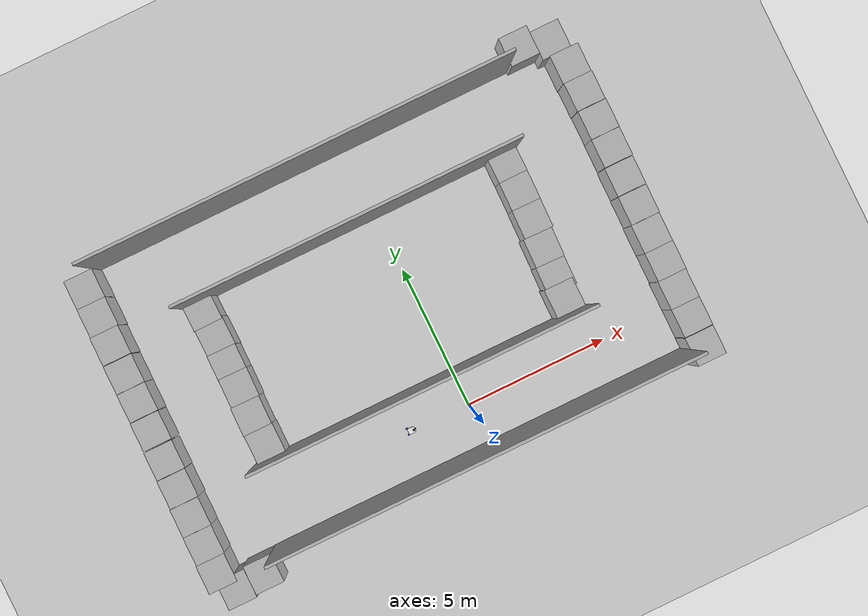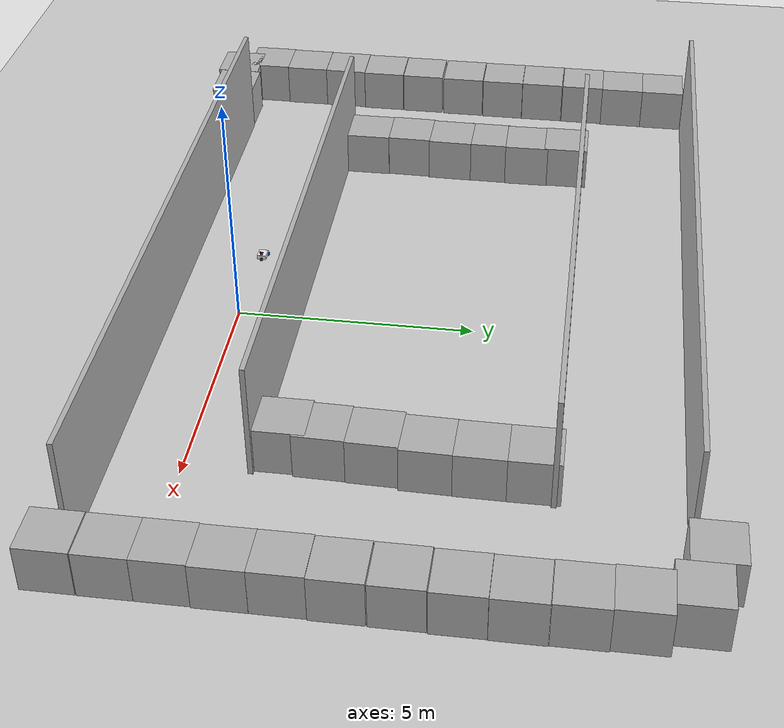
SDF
<sdf version='1.9'>
  <world name='levine_world'>
    <physics name='1ms' type='ode'>
      <max_step_size>0.001</max_step_size>
      <real_time_factor>1</real_time_factor>
      <real_time_update_rate>1000</real_time_update_rate>
    </physics>
    <plugin name='gz::sim::systems::Physics' filename='gz-sim-physics-system'/>
    <plugin name='gz::sim::systems::UserCommands' filename='gz-sim-user-commands-system'/>
    <plugin name='gz::sim::systems::SceneBroadcaster' filename='gz-sim-scene-broadcaster-system'/>
    <plugin name='gz::sim::systems::Sensors' filename='gz-sim-sensors-system'>
      <render_engine>ogre2</render_engine>
    </plugin>
    <gravity>0 0 -9.8</gravity>
    <magnetic_field>6e-06 2.3e-05 -4.2e-05</magnetic_field>
    <atmosphere type='adiabatic'/>
    <scene>
      <ambient>0.4 0.4 0.4 1</ambient>
      <background>0.7 0.7 0.7 1</background>
      <shadows>true</shadows>
    </scene>
    <model name='ground_plane'>
      <static>true</static>
      <link name='link'>
        <collision name='collision'>
          <geometry>
            <plane>
              <normal>0 0 1</normal>
              <size>102.45 102.45</size>
            </plane>
          </geometry>
          <surface>
            <friction>
              <ode/>
            </friction>
            <bounce/>
            <contact/>
          </surface>
        </collision>
        <visual name='visual'>
          <geometry>
            <plane>
              <normal>0 0 1</normal>
              <size>102.45 102.45</size>
            </plane>
          </geometry>
          <material>
            <ambient>0.8 0.8 0.8 1</ambient>
            <diffuse>0.8 0.8 0.8 1</diffuse>
            <specular>0.8 0.8 0.8 1</specular>
          </material>
        </visual>
        <pose>0 0 0 0 -0 0</pose>
        <inertial>
          <pose>0 0 0 0 -0 0</pose>
          <mass>1</mass>
          <inertia>
            <ixx>1</ixx>
            <ixy>0</ixy>
            <ixz>0</ixz>
            <iyy>1</iyy>
            <iyz>0</iyz>
            <izz>1</izz>
          </inertia>
        </inertial>
        <enable_wind>false</enable_wind>
      </link>
      <pose>0 0 0 0 -0 0</pose>
      <self_collide>false</self_collide>
    </model>
    <model name='wall_1'>
      <static>true</static>
      <pose>-1.55252 9.43523 1.25 0 -0 0</pose>
      <link name='link'>
        <collision name='collision'>
          <geometry>
            <box>
              <size>15 0.1 2.5</size>
            </box>
          </geometry>
          <surface>
            <friction>
              <ode/>
            </friction>
            <bounce/>
            <contact/>
          </surface>
        </collision>
        <visual name='visual'>
          <geometry>
            <box>
              <size>15 0.1 2.5</size>
            </box>
          </geometry>
          <material>
            <ambient>0.7 0.7 0.7 1</ambient>
            <diffuse>0.7 0.7 0.7 1</diffuse>
            <specular>0.1 0.1 0.1 1</specular>
          </material>
        </visual>
        <pose>0 0 0 0 -0 0</pose>
        <inertial>
          <pose>0 0 0 0 -0 0</pose>
          <mass>1</mass>
          <inertia>
            <ixx>1</ixx>
            <ixy>0</ixy>
            <ixz>0</ixz>
            <iyy>1</iyy>
            <iyz>0</iyz>
            <izz>1</izz>
          </inertia>
        </inertial>
        <enable_wind>false</enable_wind>
      </link>
      <self_collide>false</self_collide>
    </model>
    <model name='wall_3'>
      <static>true</static>
      <pose>-0.333023 -1.4304 1.25 0 -0 0</pose>
      <link name='link'>
        <collision name='collision'>
          <geometry>
            <box>
              <size>15 0.1 2.5</size>
            </box>
          </geometry>
          <surface>
            <friction>
              <ode/>
            </friction>
            <bounce/>
            <contact/>
          </surface>
        </collision>
        <visual name='visual'>
          <geometry>
            <box>
              <size>15 0.1 2.5</size>
            </box>
          </geometry>
          <material>
            <ambient>0.7 0.7 0.7 1</ambient>
            <diffuse>0.7 0.7 0.7 1</diffuse>
            <specular>0.1 0.1 0.1 1</specular>
          </material>
        </visual>
        <pose>0 0 0 0 -0 0</pose>
        <inertial>
          <pose>0 0 0 0 -0 0</pose>
          <mass>1</mass>
          <inertia>
            <ixx>1</ixx>
            <ixy>0</ixy>
            <ixz>0</ixz>
            <iyy>1</iyy>
            <iyz>0</iyz>
            <izz>1</izz>
          </inertia>
        </inertial>
        <enable_wind>false</enable_wind>
      </link>
      <self_collide>false</self_collide>
    </model>
    <model name='wall_5'>
      <static>true</static>
      <pose>-0.982877 6.97517 1.25 0 -0 0</pose>
      <link name='link'>
        <collision name='collision'>
          <geometry>
            <box>
              <size>12 0.1 2.5</size>
            </box>
          </geometry>
          <surface>
            <friction>
              <ode/>
            </friction>
            <bounce/>
            <contact/>
          </surface>
        </collision>
        <visual name='visual'>
          <geometry>
            <box>
              <size>12 0.1 2.5</size>
            </box>
          </geometry>
          <material>
            <ambient>0.7 0.7 0.7 1</ambient>
            <diffuse>0.7 0.7 0.7 1</diffuse>
            <specular>0.1 0.1 0.1 1</specular>
          </material>
        </visual>
        <pose>0 0 0 0 -0 0</pose>
        <inertial>
          <pose>0 0 0 0 -0 0</pose>
          <mass>1</mass>
          <inertia>
            <ixx>1</ixx>
            <ixy>0</ixy>
            <ixz>0</ixz>
            <iyy>1</iyy>
            <iyz>0</iyz>
            <izz>1</izz>
          </inertia>
        </inertial>
        <enable_wind>false</enable_wind>
      </link>
      <self_collide>false</self_collide>
    </model>
    <model name='wall_6'>
      <static>true</static>
      <pose>-1.15133 1.31562 1.25 0 -0 0</pose>
      <link name='link'>
        <collision name='collision'>
          <geometry>
            <box>
              <size>12 0.1 2.5</size>
            </box>
          </geometry>
          <surface>
            <friction>
              <ode/>
            </friction>
            <bounce/>
            <contact/>
          </surface>
        </collision>
        <visual name='visual'>
          <geometry>
            <box>
              <size>12 0.1 2.5</size>
            </box>
          </geometry>
          <material>
            <ambient>0.7 0.7 0.7 1</ambient>
            <diffuse>0.7 0.7 0.7 1</diffuse>
            <specular>0.1 0.1 0.1 1</specular>
          </material>
        </visual>
        <pose>0 0 0 0 -0 0</pose>
        <inertial>
          <pose>0 0 0 0 -0 0</pose>
          <mass>1</mass>
          <inertia>
            <ixx>1</ixx>
            <ixy>0</ixy>
            <ixz>0</ixz>
            <iyy>1</iyy>
            <iyz>0</iyz>
            <izz>1</izz>
          </inertia>
        </inertial>
        <enable_wind>false</enable_wind>
      </link>
      <self_collide>false</self_collide>
    </model>
    <model name='my_bot'>
      <link name='base_link'>
        <inertial>
          <pose>0.177215 0 0.060506 0 -0 0</pose>
          <mass>0.79000000000000004</mass>
          <inertia>
            <ixx>0.0027181900000000001</ixx>
            <ixy>0</ixy>
            <ixz>0.00091088599999999997</ixz>
            <iyy>0.0116814</iyy>
            <iyz>0</iyz>
            <izz>0.011264</izz>
          </inertia>
        </inertial>
        <collision name='base_link_fixed_joint_lump__chassis_collision'>
          <pose>0.12 0 0.05 0 0 0</pose>
          <geometry>
            <box>
              <size>0.24 0.16 0.1</size>
            </box>
          </geometry>
          <surface>
            <contact>
              <ode/>
            </contact>
            <friction>
              <ode/>
            </friction>
            <bounce/>
          </surface>
        </collision>
        <collision name='base_link_fixed_joint_lump__caster_wheel_collision_1'>
          <pose>0.24 0 0 0 0 0</pose>
          <geometry>
            <sphere>
              <radius>0.040000000000000001</radius>
            </sphere>
          </geometry>
          <surface>
            <contact>
              <ode/>
            </contact>
            <friction>
              <ode>
                <mu>0.001</mu>
                <mu2>0.001</mu2>
              </ode>
            </friction>
            <bounce/>
          </surface>
        </collision>
        <collision name='base_link_fixed_joint_lump__laser_frame_collision_2'>
          <pose>0.2 0 0.12 0 0 0</pose>
          <geometry>
            <cylinder>
              <length>0.040000000000000001</length>
              <radius>0.033000000000000002</radius>
            </cylinder>
          </geometry>
          <surface>
            <contact>
              <ode/>
            </contact>
            <friction>
              <ode/>
            </friction>
            <bounce/>
          </surface>
        </collision>
        <visual name='base_link_fixed_joint_lump__chassis_visual'>
          <pose>0.12 0 0.05 0 0 0</pose>
          <geometry>
            <box>
              <size>0.24 0.2 0.1</size>
            </box>
          </geometry>
          <material>
            <script>
              <name>Gazebo/White</name>
              <uri>file://media/materials/scripts/gazebo.material</uri>
            </script>
            <diffuse>1 1 1 1</diffuse>
            <ambient>1 1 1 1</ambient>
          </material>
        </visual>
        <visual name='base_link_fixed_joint_lump__camera_link_visual_1'>
          <pose>0.2 0 0.16 0 0 0</pose>
          <geometry>
            <box>
              <size>0.025 0.09 0.02</size>
            </box>
          </geometry>
          <material>
            <script>
              <name>Gazebo/Blue</name>
              <uri>file://media/materials/scripts/gazebo.material</uri>
            </script>
            <diffuse>0.25 0.25 1 1</diffuse>
            <ambient>0.25 0.25 1 1</ambient>
          </material>
        </visual>
        <visual name='base_link_fixed_joint_lump__caster_wheel_visual_2'>
          <pose>0.24 0 0 0 0 0</pose>
          <geometry>
            <sphere>
              <radius>0.040000000000000001</radius>
            </sphere>
          </geometry>
          <material>
            <script>
              <name>Gazebo/Black</name>
              <uri>file://media/materials/scripts/gazebo.material</uri>
            </script>
            <diffuse>0 0 0 1</diffuse>
            <ambient>0 0 0 1</ambient>
          </material>
        </visual>
        <visual name='base_link_fixed_joint_lump__laser_frame_visual_3'>
          <pose>0.2 0 0.12 0 0 0</pose>
          <geometry>
            <cylinder>
              <length>0.040000000000000001</length>
              <radius>0.033000000000000002</radius>
            </cylinder>
          </geometry>
          <material>
            <script>
              <name>Gazebo/Red</name>
              <uri>file://media/materials/scripts/gazebo.material</uri>
            </script>
            <diffuse>1 0 0 1</diffuse>
            <ambient>1 0 0 1</ambient>
          </material>
        </visual>
        <sensor name='camera_sensor' type='camera'>
          <pose>0.2 0 0.16 0 -0 0</pose>
          <topic>camera/image_raw</topic>
          <update_rate>10</update_rate>
          <enable_metrics>false</enable_metrics>
          <camera name='__default__'>
            <pose>0 0 0 0 -0 0</pose>
            <horizontal_fov>1.089</horizontal_fov>
            <image>
              <width>640</width>
              <height>480</height>
              <format>BGR_INT8</format>
              <anti_aliasing>4</anti_aliasing>
            </image>
            <camera_info_topic>camera/camera_info</camera_info_topic>
            <trigger_topic></trigger_topic>
            <triggered>false</triggered>
            <clip>
              <near>0.050000000000000003</near>
              <far>8</far>
            </clip>
            <save enabled='false'>
              <path>__default__</path>
            </save>
            <visibility_mask>4294967295</visibility_mask>
            <noise>
              <type>none</type>
              <mean>0</mean>
              <stddev>0</stddev>
            </noise>
            <distortion>
              <k1>0</k1>
              <k2>0</k2>
              <k3>0</k3>
              <p1>0</p1>
              <p2>0</p2>
              <center>0.5 0.5</center>
            </distortion>
            <lens>
              <type>stereographic</type>
              <scale_to_hfov>true</scale_to_hfov>
              <cutoff_angle>1.5708</cutoff_angle>
              <env_texture_size>256</env_texture_size>
            </lens>
            <optical_frame_id></optical_frame_id>
          </camera>
        </sensor>
        <sensor name='laser' type='gpu_lidar'>
          <pose>0.2 0 0.12 0 -0 0</pose>
          <topic>scan</topic>
          <update_rate>10</update_rate>
          <enable_metrics>false</enable_metrics>
          <lidar>
            <scan>
              <horizontal>
                <samples>360</samples>
                <resolution>1</resolution>
                <min_angle>-3.1400000000000001</min_angle>
                <max_angle>3.1400000000000001</max_angle>
              </horizontal>
              <vertical>
                <samples>1</samples>
                <min_angle>0</min_angle>
                <max_angle>0</max_angle>
                <resolution>1</resolution>
              </vertical>
            </scan>
            <range>
              <min>0.29999999999999999</min>
              <max>12</max>
              <resolution>0</resolution>
            </range>
            <noise>
              <type>none</type>
              <mean>0</mean>
              <stddev>0</stddev>
            </noise>
            <visibility_mask>4294967295</visibility_mask>
          </lidar>
        </sensor>
        <pose>0 0 0 0 -0 0</pose>
        <enable_wind>false</enable_wind>
      </link>
      <joint name='left_wheel_joint' type='revolute'>
        <pose>0 -0 0 0 0 -0</pose>
        <parent>base_link</parent>
        <child>left_wheel</child>
        <axis>
          <xyz>0 0 1</xyz>
          <limit>
            <lower>-10000000000000000</lower>
            <upper>10000000000000000</upper>
            <effort>inf</effort>
            <velocity>inf</velocity>
            <stiffness>100000000</stiffness>
            <dissipation>1</dissipation>
          </limit>
          <dynamics>
            <spring_reference>0</spring_reference>
            <spring_stiffness>0</spring_stiffness>
            <damping>0</damping>
            <friction>0</friction>
          </dynamics>
        </axis>
      </joint>
      <link name='left_wheel'>
        <pose>0 0.1 -0 1.5708 0.336591 3.14159</pose>
        <inertial>
          <pose>0 0 0 0 -0 0</pose>
          <mass>0.10000000000000001</mass>
          <inertia>
            <ixx>5.33333e-05</ixx>
            <ixy>0</ixy>
            <ixz>0</ixz>
            <iyy>5.33333e-05</iyy>
            <iyz>0</iyz>
            <izz>8.0000000000000007e-05</izz>
          </inertia>
        </inertial>
        <collision name='left_wheel_collision'>
          <pose>0 0 0 0 0 0</pose>
          <geometry>
            <sphere>
              <radius>0.040000000000000001</radius>
            </sphere>
          </geometry>
          <surface>
            <contact>
              <ode/>
            </contact>
            <friction>
              <ode/>
            </friction>
            <bounce/>
          </surface>
        </collision>
        <visual name='left_wheel_visual'>
          <pose>0 0 0 0 0 0</pose>
          <geometry>
            <cylinder>
              <length>0.040000000000000001</length>
              <radius>0.040000000000000001</radius>
            </cylinder>
          </geometry>
          <material>
            <script>
              <name>Gazebo/Blue</name>
              <uri>file://media/materials/scripts/gazebo.material</uri>
            </script>
            <diffuse>0.25 0.25 1 1</diffuse>
            <ambient>0.25 0.25 1 1</ambient>
          </material>
        </visual>
        <enable_wind>false</enable_wind>
      </link>
      <joint name='right_wheel_joint' type='revolute'>
        <pose>0 0 0 0 -0 0</pose>
        <parent>base_link</parent>
        <child>right_wheel</child>
        <axis>
          <xyz>0 0 -1</xyz>
          <limit>
            <lower>-10000000000000000</lower>
            <upper>10000000000000000</upper>
            <effort>inf</effort>
            <velocity>inf</velocity>
            <stiffness>100000000</stiffness>
            <dissipation>1</dissipation>
          </limit>
          <dynamics>
            <spring_reference>0</spring_reference>
            <spring_stiffness>0</spring_stiffness>
            <damping>0</damping>
            <friction>0</friction>
          </dynamics>
        </axis>
      </joint>
      <link name='right_wheel'>
        <pose>0 -0.1 0 1.5708 -0.404543 0</pose>
        <inertial>
          <pose>0 0 0 0 -0 0</pose>
          <mass>0.10000000000000001</mass>
          <inertia>
            <ixx>5.33333e-05</ixx>
            <ixy>0</ixy>
            <ixz>0</ixz>
            <iyy>5.33333e-05</iyy>
            <iyz>0</iyz>
            <izz>8.0000000000000007e-05</izz>
          </inertia>
        </inertial>
        <collision name='right_wheel_collision'>
          <pose>0 0 0 0 0 0</pose>
          <geometry>
            <sphere>
              <radius>0.040000000000000001</radius>
            </sphere>
          </geometry>
          <surface>
            <contact>
              <ode/>
            </contact>
            <friction>
              <ode/>
            </friction>
            <bounce/>
          </surface>
        </collision>
        <visual name='right_wheel_visual'>
          <pose>0 0 0 0 0 0</pose>
          <geometry>
            <cylinder>
              <length>0.040000000000000001</length>
              <radius>0.040000000000000001</radius>
            </cylinder>
          </geometry>
          <material>
            <script>
              <name>Gazebo/Blue</name>
              <uri>file://media/materials/scripts/gazebo.material</uri>
            </script>
            <diffuse>0.25 0.25 1 1</diffuse>
            <ambient>0.25 0.25 1 1</ambient>
          </material>
        </visual>
        <enable_wind>false</enable_wind>
      </link>
      <plugin name='gz_ros2_control::GazeboSimROS2ControlPlugin' filename='libgz_ros2_control-system.so'>
        <parameters>/home/ivan/dev_ws/install/my_bot/share/my_bot/config/my_controllers.yaml</parameters>
      </plugin>
      <frame name='base_footprint_joint' attached_to='base_link'>
        <pose>0 0 0 0 -0 0</pose>
      </frame>
      <frame name='base_footprint' attached_to='base_footprint_joint'/>
      <frame name='camera_optical_joint' attached_to='camera_link'>
        <pose>0 0 0 -1.5708 -0 -1.5708</pose>
      </frame>
      <frame name='camera_link_optical' attached_to='camera_optical_joint'/>
      <frame name='camera_joint' attached_to='chassis'>
        <pose>0.2 0 0.16 0 -0 0</pose>
      </frame>
      <frame name='camera_link' attached_to='camera_joint'/>
      <frame name='caster_wheel_joint' attached_to='chassis'>
        <pose>0.24 0 0 0 -0 0</pose>
      </frame>
      <frame name='caster_wheel' attached_to='caster_wheel_joint'/>
      <frame name='laser_joint' attached_to='chassis'>
        <pose>0.2 0 0.12 0 -0 0</pose>
      </frame>
      <frame name='laser_frame' attached_to='laser_joint'/>
      <frame name='chassis_joint' attached_to='base_link'>
        <pose>0 0 0 0 -0 0</pose>
      </frame>
      <frame name='chassis' attached_to='chassis_joint'/>
      <pose>-2.19493 0.074646 0.04 -0 0 -0.047788</pose>
      <static>false</static>
      <self_collide>false</self_collide>
    </model>
    <model name='box'>
      <pose>4.46683 6.60097 0.500107 6e-06 0.000207 0.002485</pose>
      <link name='box_link'>
        <inertial>
          <inertia>
            <ixx>0.16666</ixx>
            <ixy>0</ixy>
            <ixz>0</ixz>
            <iyy>0.16666</iyy>
            <iyz>0</iyz>
            <izz>0.16666</izz>
          </inertia>
          <mass>1</mass>
          <pose>0 0 0 0 -0 0</pose>
        </inertial>
        <collision name='box_collision'>
          <geometry>
            <box>
              <size>1 1 1</size>
            </box>
          </geometry>
          <surface>
            <friction>
              <ode/>
            </friction>
            <bounce/>
            <contact/>
          </surface>
        </collision>
        <visual name='box_visual'>
          <geometry>
            <box>
              <size>1 1 1</size>
            </box>
          </geometry>
          <material>
            <ambient>0.3 0.3 0.3 1</ambient>
            <diffuse>0.7 0.7 0.7 1</diffuse>
            <specular>1 1 1 1</specular>
          </material>
        </visual>
        <pose>0 0 0 0 -0 0</pose>
        <enable_wind>false</enable_wind>
      </link>
      <static>false</static>
      <self_collide>false</self_collide>
    </model>
    <model name='box_1'>
      <pose>4.36132 3.6148 0.500011 4e-06 1.7e-05 -0.02189</pose>
      <link name='box_link'>
        <inertial>
          <inertia>
            <ixx>0.16666</ixx>
            <ixy>0</ixy>
            <ixz>0</ixz>
            <iyy>0.16666</iyy>
            <iyz>0</iyz>
            <izz>0.16666</izz>
          </inertia>
          <mass>1</mass>
          <pose>0 0 0 0 -0 0</pose>
        </inertial>
        <collision name='box_collision'>
          <geometry>
            <box>
              <size>1 1 1</size>
            </box>
          </geometry>
          <surface>
            <friction>
              <ode/>
            </friction>
            <bounce/>
            <contact/>
          </surface>
        </collision>
        <visual name='box_visual'>
          <geometry>
            <box>
              <size>1 1 1</size>
            </box>
          </geometry>
          <material>
            <ambient>0.3 0.3 0.3 1</ambient>
            <diffuse>0.7 0.7 0.7 1</diffuse>
            <specular>1 1 1 1</specular>
          </material>
        </visual>
        <pose>0 0 0 0 -0 0</pose>
        <enable_wind>false</enable_wind>
      </link>
      <static>false</static>
      <self_collide>false</self_collide>
    </model>
    <model name='box_2'>
      <pose>4.32363 2.61545 0.500004 4e-06 -4e-06 -0.021908</pose>
      <link name='box_link'>
        <inertial>
          <inertia>
            <ixx>0.16666</ixx>
            <ixy>0</ixy>
            <ixz>0</ixz>
            <iyy>0.16666</iyy>
            <iyz>0</iyz>
            <izz>0.16666</izz>
          </inertia>
          <mass>1</mass>
          <pose>0 0 0 0 -0 0</pose>
        </inertial>
        <collision name='box_collision'>
          <geometry>
            <box>
              <size>1 1 1</size>
            </box>
          </geometry>
          <surface>
            <friction>
              <ode/>
            </friction>
            <bounce/>
            <contact/>
          </surface>
        </collision>
        <visual name='box_visual'>
          <geometry>
            <box>
              <size>1 1 1</size>
            </box>
          </geometry>
          <material>
            <ambient>0.3 0.3 0.3 1</ambient>
            <diffuse>0.7 0.7 0.7 1</diffuse>
            <specular>1 1 1 1</specular>
          </material>
        </visual>
        <pose>0 0 0 0 -0 0</pose>
        <enable_wind>false</enable_wind>
      </link>
      <static>false</static>
      <self_collide>false</self_collide>
    </model>
    <model name='box_3'>
      <pose>4.43897 4.61218 0.500031 4e-06 5.7e-05 -0.019378</pose>
      <link name='box_link'>
        <inertial>
          <inertia>
            <ixx>0.16666</ixx>
            <ixy>0</ixy>
            <ixz>0</ixz>
            <iyy>0.16666</iyy>
            <iyz>0</iyz>
            <izz>0.16666</izz>
          </inertia>
          <mass>1</mass>
          <pose>0 0 0 0 -0 0</pose>
        </inertial>
        <collision name='box_collision'>
          <geometry>
            <box>
              <size>1 1 1</size>
            </box>
          </geometry>
          <surface>
            <friction>
              <ode/>
            </friction>
            <bounce/>
            <contact/>
          </surface>
        </collision>
        <visual name='box_visual'>
          <geometry>
            <box>
              <size>1 1 1</size>
            </box>
          </geometry>
          <material>
            <ambient>0.3 0.3 0.3 1</ambient>
            <diffuse>0.7 0.7 0.7 1</diffuse>
            <specular>1 1 1 1</specular>
          </material>
        </visual>
        <pose>0 0 0 0 -0 0</pose>
        <enable_wind>false</enable_wind>
      </link>
      <static>false</static>
      <self_collide>false</self_collide>
    </model>
    <model name='box_4'>
      <pose>4.26525 1.86556 0.500012 -0 9e-06 -7e-06</pose>
      <link name='box_link'>
        <inertial>
          <inertia>
            <ixx>0.16666</ixx>
            <ixy>0</ixy>
            <ixz>0</ixz>
            <iyy>0.16666</iyy>
            <iyz>0</iyz>
            <izz>0.16666</izz>
          </inertia>
          <mass>1</mass>
          <pose>0 0 0 0 -0 0</pose>
        </inertial>
        <collision name='box_collision'>
          <geometry>
            <box>
              <size>1 1 1</size>
            </box>
          </geometry>
          <surface>
            <friction>
              <ode/>
            </friction>
            <bounce/>
            <contact/>
          </surface>
        </collision>
        <visual name='box_visual'>
          <geometry>
            <box>
              <size>1 1 1</size>
            </box>
          </geometry>
          <material>
            <ambient>0.3 0.3 0.3 1</ambient>
            <diffuse>0.7 0.7 0.7 1</diffuse>
            <specular>1 1 1 1</specular>
          </material>
        </visual>
        <pose>0 0 0 0 -0 0</pose>
        <enable_wind>false</enable_wind>
      </link>
      <static>false</static>
      <self_collide>false</self_collide>
    </model>
    <model name='box_0'>
      <pose>4.46118 5.60802 0.500063 5e-06 0.000122 -0.011508</pose>
      <link name='box_link'>
        <inertial>
          <inertia>
            <ixx>0.16666</ixx>
            <ixy>0</ixy>
            <ixz>0</ixz>
            <iyy>0.16666</iyy>
            <iyz>0</iyz>
            <izz>0.16666</izz>
          </inertia>
          <mass>1</mass>
          <pose>0 0 0 0 -0 0</pose>
        </inertial>
        <collision name='box_collision'>
          <geometry>
            <box>
              <size>1 1 1</size>
            </box>
          </geometry>
          <surface>
            <friction>
              <ode/>
            </friction>
            <bounce/>
            <contact/>
          </surface>
        </collision>
        <visual name='box_visual'>
          <geometry>
            <box>
              <size>1 1 1</size>
            </box>
          </geometry>
          <material>
            <ambient>0.3 0.3 0.3 1</ambient>
            <diffuse>0.7 0.7 0.7 1</diffuse>
            <specular>1 1 1 1</specular>
          </material>
        </visual>
        <pose>0 0 0 0 -0 0</pose>
        <enable_wind>false</enable_wind>
      </link>
      <static>false</static>
      <self_collide>false</self_collide>
    </model>
    <model name='box_9'>
      <pose>-6.47369 1.86557 0.500036 1.6e-05 -5.7e-05 -1.5e-05</pose>
      <link name='box_link'>
        <inertial>
          <inertia>
            <ixx>0.16666</ixx>
            <ixy>0</ixy>
            <ixz>0</ixz>
            <iyy>0.16666</iyy>
            <iyz>0</iyz>
            <izz>0.16666</izz>
          </inertia>
          <mass>1</mass>
          <pose>0 0 0 0 -0 0</pose>
        </inertial>
        <collision name='box_collision'>
          <geometry>
            <box>
              <size>1 1 1</size>
            </box>
          </geometry>
          <surface>
            <friction>
              <ode/>
            </friction>
            <bounce/>
            <contact/>
          </surface>
        </collision>
        <visual name='box_visual'>
          <geometry>
            <box>
              <size>1 1 1</size>
            </box>
          </geometry>
          <material>
            <ambient>0.3 0.3 0.3 1</ambient>
            <diffuse>0.7 0.7 0.7 1</diffuse>
            <specular>1 1 1 1</specular>
          </material>
        </visual>
        <pose>0 0 0 0 -0 0</pose>
        <enable_wind>false</enable_wind>
      </link>
      <static>false</static>
      <self_collide>false</self_collide>
    </model>
    <model name='box_10'>
      <pose>-6.43593 4.69602 0.500002 -3e-06 -0 -0.007942</pose>
      <link name='box_link'>
        <inertial>
          <inertia>
            <ixx>0.16666</ixx>
            <ixy>0</ixy>
            <ixz>0</ixz>
            <iyy>0.16666</iyy>
            <iyz>0</iyz>
            <izz>0.16666</izz>
          </inertia>
          <mass>1</mass>
          <pose>0 0 0 0 -0 0</pose>
        </inertial>
        <collision name='box_collision'>
          <geometry>
            <box>
              <size>1 1 1</size>
            </box>
          </geometry>
          <surface>
            <friction>
              <ode/>
            </friction>
            <bounce/>
            <contact/>
          </surface>
        </collision>
        <visual name='box_visual'>
          <geometry>
            <box>
              <size>1 1 1</size>
            </box>
          </geometry>
          <material>
            <ambient>0.3 0.3 0.3 1</ambient>
            <diffuse>0.7 0.7 0.7 1</diffuse>
            <specular>1 1 1 1</specular>
          </material>
        </visual>
        <pose>0 0 0 0 -0 0</pose>
        <enable_wind>false</enable_wind>
      </link>
      <static>false</static>
      <self_collide>false</self_collide>
    </model>
    <model name='box_13'>
      <pose>-6.42009 5.6737 0.5 0 0 0.010065</pose>
      <link name='box_link'>
        <inertial>
          <inertia>
            <ixx>0.16666</ixx>
            <ixy>0</ixy>
            <ixz>0</ixz>
            <iyy>0.16666</iyy>
            <iyz>0</iyz>
            <izz>0.16666</izz>
          </inertia>
          <mass>1</mass>
          <pose>0 0 0 0 -0 0</pose>
        </inertial>
        <collision name='box_collision'>
          <geometry>
            <box>
              <size>1 1 1</size>
            </box>
          </geometry>
          <surface>
            <friction>
              <ode/>
            </friction>
            <bounce/>
            <contact/>
          </surface>
        </collision>
        <visual name='box_visual'>
          <geometry>
            <box>
              <size>1 1 1</size>
            </box>
          </geometry>
          <material>
            <ambient>0.3 0.3 0.3 1</ambient>
            <diffuse>0.7 0.7 0.7 1</diffuse>
            <specular>1 1 1 1</specular>
          </material>
        </visual>
        <pose>0 0 0 0 -0 0</pose>
        <enable_wind>false</enable_wind>
      </link>
      <static>false</static>
      <self_collide>false</self_collide>
    </model>
    <model name='box_14'>
      <pose>-6.44751 6.59984 0.500004 4e-06 0 0.001034</pose>
      <link name='box_link'>
        <inertial>
          <inertia>
            <ixx>0.16666</ixx>
            <ixy>0</ixy>
            <ixz>0</ixz>
            <iyy>0.16666</iyy>
            <iyz>0</iyz>
            <izz>0.16666</izz>
          </inertia>
          <mass>1</mass>
          <pose>0 0 0 0 -0 0</pose>
        </inertial>
        <collision name='box_collision'>
          <geometry>
            <box>
              <size>1 1 1</size>
            </box>
          </geometry>
          <surface>
            <friction>
              <ode/>
            </friction>
            <bounce/>
            <contact/>
          </surface>
        </collision>
        <visual name='box_visual'>
          <geometry>
            <box>
              <size>1 1 1</size>
            </box>
          </geometry>
          <material>
            <ambient>0.3 0.3 0.3 1</ambient>
            <diffuse>0.7 0.7 0.7 1</diffuse>
            <specular>1 1 1 1</specular>
          </material>
        </visual>
        <pose>0 0 0 0 -0 0</pose>
        <enable_wind>false</enable_wind>
      </link>
      <static>false</static>
      <self_collide>false</self_collide>
    </model>
    <model name='box_15'>
      <pose>-6.44078 3.85474 0.500004 8e-06 -0 -0.015068</pose>
      <link name='box_link'>
        <inertial>
          <inertia>
            <ixx>0.16666</ixx>
            <ixy>0</ixy>
            <ixz>0</ixz>
            <iyy>0.16666</iyy>
            <iyz>0</iyz>
            <izz>0.16666</izz>
          </inertia>
          <mass>1</mass>
          <pose>0 0 0 0 -0 0</pose>
        </inertial>
        <collision name='box_collision'>
          <geometry>
            <box>
              <size>1 1 1</size>
            </box>
          </geometry>
          <surface>
            <friction>
              <ode/>
            </friction>
            <bounce/>
            <contact/>
          </surface>
        </collision>
        <visual name='box_visual'>
          <geometry>
            <box>
              <size>1 1 1</size>
            </box>
          </geometry>
          <material>
            <ambient>0.3 0.3 0.3 1</ambient>
            <diffuse>0.7 0.7 0.7 1</diffuse>
            <specular>1 1 1 1</specular>
          </material>
        </visual>
        <pose>0 0 0 0 -0 0</pose>
        <enable_wind>false</enable_wind>
      </link>
      <static>false</static>
      <self_collide>false</self_collide>
    </model>
    <model name='box_16'>
      <pose>-6.48497 2.8571 0.500011 5e-06 -1.4e-05 -0.014585</pose>
      <link name='box_link'>
        <inertial>
          <inertia>
            <ixx>0.16666</ixx>
            <ixy>0</ixy>
            <ixz>0</ixz>
            <iyy>0.16666</iyy>
            <iyz>0</iyz>
            <izz>0.16666</izz>
          </inertia>
          <mass>1</mass>
          <pose>0 0 0 0 -0 0</pose>
        </inertial>
        <collision name='box_collision'>
          <geometry>
            <box>
              <size>1 1 1</size>
            </box>
          </geometry>
          <surface>
            <friction>
              <ode/>
            </friction>
            <bounce/>
            <contact/>
          </surface>
        </collision>
        <visual name='box_visual'>
          <geometry>
            <box>
              <size>1 1 1</size>
            </box>
          </geometry>
          <material>
            <ambient>0.3 0.3 0.3 1</ambient>
            <diffuse>0.7 0.7 0.7 1</diffuse>
            <specular>1 1 1 1</specular>
          </material>
        </visual>
        <pose>0 0 0 0 -0 0</pose>
        <enable_wind>false</enable_wind>
      </link>
      <static>false</static>
      <self_collide>false</self_collide>
    </model>
    <model name='box_5'>
      <pose>-8.34821 -1.89162 0.5 0 0 -0</pose>
      <link name='box_link'>
        <inertial>
          <inertia>
            <ixx>0.16666</ixx>
            <ixy>0</ixy>
            <ixz>0</ixz>
            <iyy>0.16666</iyy>
            <iyz>0</iyz>
            <izz>0.16666</izz>
          </inertia>
          <mass>1</mass>
          <pose>0 0 0 0 -0 0</pose>
        </inertial>
        <collision name='box_collision'>
          <geometry>
            <box>
              <size>1 1 1</size>
            </box>
          </geometry>
          <surface>
            <friction>
              <ode/>
            </friction>
            <bounce/>
            <contact/>
          </surface>
        </collision>
        <visual name='box_visual'>
          <geometry>
            <box>
              <size>1 1 1</size>
            </box>
          </geometry>
          <material>
            <ambient>0.3 0.3 0.3 1</ambient>
            <diffuse>0.7 0.7 0.7 1</diffuse>
            <specular>1 1 1 1</specular>
          </material>
        </visual>
        <pose>0 0 0 0 -0 0</pose>
        <enable_wind>false</enable_wind>
      </link>
      <static>false</static>
      <self_collide>false</self_collide>
    </model>
    <model name='box_6'>
      <pose>-9.53217 8.8738 0.5 0 0 -0</pose>
      <link name='box_link'>
        <inertial>
          <inertia>
            <ixx>0.16666</ixx>
            <ixy>0</ixy>
            <ixz>0</ixz>
            <iyy>0.16666</iyy>
            <iyz>0</iyz>
            <izz>0.16666</izz>
          </inertia>
          <mass>1</mass>
          <pose>0 0 0 0 -0 0</pose>
        </inertial>
        <collision name='box_collision'>
          <geometry>
            <box>
              <size>1 1 1</size>
            </box>
          </geometry>
          <surface>
            <friction>
              <ode/>
            </friction>
            <bounce/>
            <contact/>
          </surface>
        </collision>
        <visual name='box_visual'>
          <geometry>
            <box>
              <size>1 1 1</size>
            </box>
          </geometry>
          <material>
            <ambient>0.3 0.3 0.3 1</ambient>
            <diffuse>0.7 0.7 0.7 1</diffuse>
            <specular>1 1 1 1</specular>
          </material>
        </visual>
        <pose>0 0 0 0 -0 0</pose>
        <enable_wind>false</enable_wind>
      </link>
      <static>false</static>
      <self_collide>false</self_collide>
    </model>
    <model name='box_7'>
      <pose>-9.54126 7.8738 0.5 0 0 -0</pose>
      <link name='box_link'>
        <inertial>
          <inertia>
            <ixx>0.16666</ixx>
            <ixy>0</ixy>
            <ixz>0</ixz>
            <iyy>0.16666</iyy>
            <iyz>0</iyz>
            <izz>0.16666</izz>
          </inertia>
          <mass>1</mass>
          <pose>0 0 0 0 -0 0</pose>
        </inertial>
        <collision name='box_collision'>
          <geometry>
            <box>
              <size>1 1 1</size>
            </box>
          </geometry>
          <surface>
            <friction>
              <ode/>
            </friction>
            <bounce/>
            <contact/>
          </surface>
        </collision>
        <visual name='box_visual'>
          <geometry>
            <box>
              <size>1 1 1</size>
            </box>
          </geometry>
          <material>
            <ambient>0.3 0.3 0.3 1</ambient>
            <diffuse>0.7 0.7 0.7 1</diffuse>
            <specular>1 1 1 1</specular>
          </material>
        </visual>
        <pose>0 0 0 0 -0 0</pose>
        <enable_wind>false</enable_wind>
      </link>
      <static>false</static>
      <self_collide>false</self_collide>
    </model>
    <model name='box_8'>
      <pose>-9.56931 6.8738 0.5 0 0 -0</pose>
      <link name='box_link'>
        <inertial>
          <inertia>
            <ixx>0.16666</ixx>
            <ixy>0</ixy>
            <ixz>0</ixz>
            <iyy>0.16666</iyy>
            <iyz>0</iyz>
            <izz>0.16666</izz>
          </inertia>
          <mass>1</mass>
          <pose>0 0 0 0 -0 0</pose>
        </inertial>
        <collision name='box_collision'>
          <geometry>
            <box>
              <size>1 1 1</size>
            </box>
          </geometry>
          <surface>
            <friction>
              <ode/>
            </friction>
            <bounce/>
            <contact/>
          </surface>
        </collision>
        <visual name='box_visual'>
          <geometry>
            <box>
              <size>1 1 1</size>
            </box>
          </geometry>
          <material>
            <ambient>0.3 0.3 0.3 1</ambient>
            <diffuse>0.7 0.7 0.7 1</diffuse>
            <specular>1 1 1 1</specular>
          </material>
        </visual>
        <pose>0 0 0 0 -0 0</pose>
        <enable_wind>false</enable_wind>
      </link>
      <static>false</static>
      <self_collide>false</self_collide>
    </model>
    <model name='box_11'>
      <pose>-9.57977 5.85483 0.5 0 0 -0</pose>
      <link name='box_link'>
        <inertial>
          <inertia>
            <ixx>0.16666</ixx>
            <ixy>0</ixy>
            <ixz>0</ixz>
            <iyy>0.16666</iyy>
            <iyz>0</iyz>
            <izz>0.16666</izz>
          </inertia>
          <mass>1</mass>
          <pose>0 0 0 0 -0 0</pose>
        </inertial>
        <collision name='box_collision'>
          <geometry>
            <box>
              <size>1 1 1</size>
            </box>
          </geometry>
          <surface>
            <friction>
              <ode/>
            </friction>
            <bounce/>
            <contact/>
          </surface>
        </collision>
        <visual name='box_visual'>
          <geometry>
            <box>
              <size>1 1 1</size>
            </box>
          </geometry>
          <material>
            <ambient>0.3 0.3 0.3 1</ambient>
            <diffuse>0.7 0.7 0.7 1</diffuse>
            <specular>1 1 1 1</specular>
          </material>
        </visual>
        <pose>0 0 0 0 -0 0</pose>
        <enable_wind>false</enable_wind>
      </link>
      <static>false</static>
      <self_collide>false</self_collide>
    </model>
    <model name='box_12'>
      <pose>-9.58502 4.84998 0.5 0 0 -0</pose>
      <link name='box_link'>
        <inertial>
          <inertia>
            <ixx>0.16666</ixx>
            <ixy>0</ixy>
            <ixz>0</ixz>
            <iyy>0.16666</iyy>
            <iyz>0</iyz>
            <izz>0.16666</izz>
          </inertia>
          <mass>1</mass>
          <pose>0 0 0 0 -0 0</pose>
        </inertial>
        <collision name='box_collision'>
          <geometry>
            <box>
              <size>1 1 1</size>
            </box>
          </geometry>
          <surface>
            <friction>
              <ode/>
            </friction>
            <bounce/>
            <contact/>
          </surface>
        </collision>
        <visual name='box_visual'>
          <geometry>
            <box>
              <size>1 1 1</size>
            </box>
          </geometry>
          <material>
            <ambient>0.3 0.3 0.3 1</ambient>
            <diffuse>0.7 0.7 0.7 1</diffuse>
            <specular>1 1 1 1</specular>
          </material>
        </visual>
        <pose>0 0 0 0 -0 0</pose>
        <enable_wind>false</enable_wind>
      </link>
      <static>false</static>
      <self_collide>false</self_collide>
    </model>
    <model name='box_17'>
      <pose>-9.60114 3.83494 0.5 0 -0 0</pose>
      <link name='box_link'>
        <inertial>
          <inertia>
            <ixx>0.16666</ixx>
            <ixy>0</ixy>
            <ixz>0</ixz>
            <iyy>0.16666</iyy>
            <iyz>0</iyz>
            <izz>0.16666</izz>
          </inertia>
          <mass>1</mass>
          <pose>0 0 0 0 -0 0</pose>
        </inertial>
        <collision name='box_collision'>
          <geometry>
            <box>
              <size>1 1 1</size>
            </box>
          </geometry>
          <surface>
            <friction>
              <ode/>
            </friction>
            <bounce/>
            <contact/>
          </surface>
        </collision>
        <visual name='box_visual'>
          <geometry>
            <box>
              <size>1 1 1</size>
            </box>
          </geometry>
          <material>
            <ambient>0.3 0.3 0.3 1</ambient>
            <diffuse>0.7 0.7 0.7 1</diffuse>
            <specular>1 1 1 1</specular>
          </material>
        </visual>
        <pose>0 0 0 0 -0 0</pose>
        <enable_wind>false</enable_wind>
      </link>
      <static>false</static>
      <self_collide>false</self_collide>
    </model>
    <model name='box_18'>
      <pose>-9.62309 2.79496 0.5 0 0 -0</pose>
      <link name='box_link'>
        <inertial>
          <inertia>
            <ixx>0.16666</ixx>
            <ixy>0</ixy>
            <ixz>0</ixz>
            <iyy>0.16666</iyy>
            <iyz>0</iyz>
            <izz>0.16666</izz>
          </inertia>
          <mass>1</mass>
          <pose>0 0 0 0 -0 0</pose>
        </inertial>
        <collision name='box_collision'>
          <geometry>
            <box>
              <size>1 1 1</size>
            </box>
          </geometry>
          <surface>
            <friction>
              <ode/>
            </friction>
            <bounce/>
            <contact/>
          </surface>
        </collision>
        <visual name='box_visual'>
          <geometry>
            <box>
              <size>1 1 1</size>
            </box>
          </geometry>
          <material>
            <ambient>0.3 0.3 0.3 1</ambient>
            <diffuse>0.7 0.7 0.7 1</diffuse>
            <specular>1 1 1 1</specular>
          </material>
        </visual>
        <pose>0 0 0 0 -0 0</pose>
        <enable_wind>false</enable_wind>
      </link>
      <static>false</static>
      <self_collide>false</self_collide>
    </model>
    <model name='box_19'>
      <pose>-9.639 1.78309 0.5 0 0 -0</pose>
      <link name='box_link'>
        <inertial>
          <inertia>
            <ixx>0.16666</ixx>
            <ixy>0</ixy>
            <ixz>0</ixz>
            <iyy>0.16666</iyy>
            <iyz>0</iyz>
            <izz>0.16666</izz>
          </inertia>
          <mass>1</mass>
          <pose>0 0 0 0 -0 0</pose>
        </inertial>
        <collision name='box_collision'>
          <geometry>
            <box>
              <size>1 1 1</size>
            </box>
          </geometry>
          <surface>
            <friction>
              <ode/>
            </friction>
            <bounce/>
            <contact/>
          </surface>
        </collision>
        <visual name='box_visual'>
          <geometry>
            <box>
              <size>1 1 1</size>
            </box>
          </geometry>
          <material>
            <ambient>0.3 0.3 0.3 1</ambient>
            <diffuse>0.7 0.7 0.7 1</diffuse>
            <specular>1 1 1 1</specular>
          </material>
        </visual>
        <pose>0 0 0 0 -0 0</pose>
        <enable_wind>false</enable_wind>
      </link>
      <static>false</static>
      <self_collide>false</self_collide>
    </model>
    <model name='box_20'>
      <pose>-9.66595 0.777901 0.5 0 0 -0</pose>
      <link name='box_link'>
        <inertial>
          <inertia>
            <ixx>0.16666</ixx>
            <ixy>0</ixy>
            <ixz>0</ixz>
            <iyy>0.16666</iyy>
            <iyz>0</iyz>
            <izz>0.16666</izz>
          </inertia>
          <mass>1</mass>
          <pose>0 0 0 0 -0 0</pose>
        </inertial>
        <collision name='box_collision'>
          <geometry>
            <box>
              <size>1 1 1</size>
            </box>
          </geometry>
          <surface>
            <friction>
              <ode/>
            </friction>
            <bounce/>
            <contact/>
          </surface>
        </collision>
        <visual name='box_visual'>
          <geometry>
            <box>
              <size>1 1 1</size>
            </box>
          </geometry>
          <material>
            <ambient>0.3 0.3 0.3 1</ambient>
            <diffuse>0.7 0.7 0.7 1</diffuse>
            <specular>1 1 1 1</specular>
          </material>
        </visual>
        <pose>0 0 0 0 -0 0</pose>
        <enable_wind>false</enable_wind>
      </link>
      <static>false</static>
      <self_collide>false</self_collide>
    </model>
    <model name='box_21'>
      <pose>-9.67633 -0.22416 0.5 -0 -0 1e-06</pose>
      <link name='box_link'>
        <inertial>
          <inertia>
            <ixx>0.16666</ixx>
            <ixy>0</ixy>
            <ixz>0</ixz>
            <iyy>0.16666</iyy>
            <iyz>0</iyz>
            <izz>0.16666</izz>
          </inertia>
          <mass>1</mass>
          <pose>0 0 0 0 -0 0</pose>
        </inertial>
        <collision name='box_collision'>
          <geometry>
            <box>
              <size>1 1 1</size>
            </box>
          </geometry>
          <surface>
            <friction>
              <ode/>
            </friction>
            <bounce/>
            <contact/>
          </surface>
        </collision>
        <visual name='box_visual'>
          <geometry>
            <box>
              <size>1 1 1</size>
            </box>
          </geometry>
          <material>
            <ambient>0.3 0.3 0.3 1</ambient>
            <diffuse>0.7 0.7 0.7 1</diffuse>
            <specular>1 1 1 1</specular>
          </material>
        </visual>
        <pose>0 0 0 0 -0 0</pose>
        <enable_wind>false</enable_wind>
      </link>
      <static>false</static>
      <self_collide>false</self_collide>
    </model>
    <model name='box_22'>
      <pose>-9.70093 -1.22416 0.5 0 0 1e-06</pose>
      <link name='box_link'>
        <inertial>
          <inertia>
            <ixx>0.16666</ixx>
            <ixy>0</ixy>
            <ixz>0</ixz>
            <iyy>0.16666</iyy>
            <iyz>0</iyz>
            <izz>0.16666</izz>
          </inertia>
          <mass>1</mass>
          <pose>0 0 0 0 -0 0</pose>
        </inertial>
        <collision name='box_collision'>
          <geometry>
            <box>
              <size>1 1 1</size>
            </box>
          </geometry>
          <surface>
            <friction>
              <ode/>
            </friction>
            <bounce/>
            <contact/>
          </surface>
        </collision>
        <visual name='box_visual'>
          <geometry>
            <box>
              <size>1 1 1</size>
            </box>
          </geometry>
          <material>
            <ambient>0.3 0.3 0.3 1</ambient>
            <diffuse>0.7 0.7 0.7 1</diffuse>
            <specular>1 1 1 1</specular>
          </material>
        </visual>
        <pose>0 0 0 0 -0 0</pose>
        <enable_wind>false</enable_wind>
      </link>
      <static>false</static>
      <self_collide>false</self_collide>
    </model>
    <model name='box_23'>
      <pose>-9.35061 -1.9657 0.5 0 0 5e-06</pose>
      <link name='box_link'>
        <inertial>
          <inertia>
            <ixx>0.16666</ixx>
            <ixy>0</ixy>
            <ixz>0</ixz>
            <iyy>0.16666</iyy>
            <iyz>0</iyz>
            <izz>0.16666</izz>
          </inertia>
          <mass>1</mass>
          <pose>0 0 0 0 -0 0</pose>
        </inertial>
        <collision name='box_collision'>
          <geometry>
            <box>
              <size>1 1 1</size>
            </box>
          </geometry>
          <surface>
            <friction>
              <ode/>
            </friction>
            <bounce/>
            <contact/>
          </surface>
        </collision>
        <visual name='box_visual'>
          <geometry>
            <box>
              <size>1 1 1</size>
            </box>
          </geometry>
          <material>
            <ambient>0.3 0.3 0.3 1</ambient>
            <diffuse>0.7 0.7 0.7 1</diffuse>
            <specular>1 1 1 1</specular>
          </material>
        </visual>
        <pose>0 0 0 0 -0 0</pose>
        <enable_wind>false</enable_wind>
      </link>
      <static>false</static>
      <self_collide>false</self_collide>
    </model>
    <model name='box_24'>
      <pose>6.47526 9.79693 0.5 -0 -0 -1e-06</pose>
      <link name='box_link'>
        <inertial>
          <inertia>
            <ixx>0.16666</ixx>
            <ixy>0</ixy>
            <ixz>0</ixz>
            <iyy>0.16666</iyy>
            <iyz>0</iyz>
            <izz>0.16666</izz>
          </inertia>
          <mass>1</mass>
          <pose>0 0 0 0 -0 0</pose>
        </inertial>
        <collision name='box_collision'>
          <geometry>
            <box>
              <size>1 1 1</size>
            </box>
          </geometry>
          <surface>
            <friction>
              <ode/>
            </friction>
            <bounce/>
            <contact/>
          </surface>
        </collision>
        <visual name='box_visual'>
          <geometry>
            <box>
              <size>1 1 1</size>
            </box>
          </geometry>
          <material>
            <ambient>0.3 0.3 0.3 1</ambient>
            <diffuse>0.7 0.7 0.7 1</diffuse>
            <specular>1 1 1 1</specular>
          </material>
        </visual>
        <pose>0 0 0 0 -0 0</pose>
        <enable_wind>false</enable_wind>
      </link>
      <static>false</static>
      <self_collide>false</self_collide>
    </model>
    <model name='box_25'>
      <pose>7.67186 -1.50088 0.5 0 -0 0</pose>
      <link name='box_link'>
        <inertial>
          <inertia>
            <ixx>0.16666</ixx>
            <ixy>0</ixy>
            <ixz>0</ixz>
            <iyy>0.16666</iyy>
            <iyz>0</iyz>
            <izz>0.16666</izz>
          </inertia>
          <mass>1</mass>
          <pose>0 0 0 0 -0 0</pose>
        </inertial>
        <collision name='box_collision'>
          <geometry>
            <box>
              <size>1 1 1</size>
            </box>
          </geometry>
          <surface>
            <friction>
              <ode/>
            </friction>
            <bounce/>
            <contact/>
          </surface>
        </collision>
        <visual name='box_visual'>
          <geometry>
            <box>
              <size>1 1 1</size>
            </box>
          </geometry>
          <material>
            <ambient>0.3 0.3 0.3 1</ambient>
            <diffuse>0.7 0.7 0.7 1</diffuse>
            <specular>1 1 1 1</specular>
          </material>
        </visual>
        <pose>0 0 0 0 -0 0</pose>
        <enable_wind>false</enable_wind>
      </link>
      <static>false</static>
      <self_collide>false</self_collide>
    </model>
    <model name='box_26'>
      <pose>7.67755 -0.482943 0.5 0 -0 -0</pose>
      <link name='box_link'>
        <inertial>
          <inertia>
            <ixx>0.16666</ixx>
            <ixy>0</ixy>
            <ixz>0</ixz>
            <iyy>0.16666</iyy>
            <iyz>0</iyz>
            <izz>0.16666</izz>
          </inertia>
          <mass>1</mass>
          <pose>0 0 0 0 -0 0</pose>
        </inertial>
        <collision name='box_collision'>
          <geometry>
            <box>
              <size>1 1 1</size>
            </box>
          </geometry>
          <surface>
            <friction>
              <ode/>
            </friction>
            <bounce/>
            <contact/>
          </surface>
        </collision>
        <visual name='box_visual'>
          <geometry>
            <box>
              <size>1 1 1</size>
            </box>
          </geometry>
          <material>
            <ambient>0.3 0.3 0.3 1</ambient>
            <diffuse>0.7 0.7 0.7 1</diffuse>
            <specular>1 1 1 1</specular>
          </material>
        </visual>
        <pose>0 0 0 0 -0 0</pose>
        <enable_wind>false</enable_wind>
      </link>
      <static>false</static>
      <self_collide>false</self_collide>
    </model>
    <model name='box_27'>
      <pose>7.67666 0.517057 0.5 -0 -0 0</pose>
      <link name='box_link'>
        <inertial>
          <inertia>
            <ixx>0.16666</ixx>
            <ixy>0</ixy>
            <ixz>0</ixz>
            <iyy>0.16666</iyy>
            <iyz>0</iyz>
            <izz>0.16666</izz>
          </inertia>
          <mass>1</mass>
          <pose>0 0 0 0 -0 0</pose>
        </inertial>
        <collision name='box_collision'>
          <geometry>
            <box>
              <size>1 1 1</size>
            </box>
          </geometry>
          <surface>
            <friction>
              <ode/>
            </friction>
            <bounce/>
            <contact/>
          </surface>
        </collision>
        <visual name='box_visual'>
          <geometry>
            <box>
              <size>1 1 1</size>
            </box>
          </geometry>
          <material>
            <ambient>0.3 0.3 0.3 1</ambient>
            <diffuse>0.7 0.7 0.7 1</diffuse>
            <specular>1 1 1 1</specular>
          </material>
        </visual>
        <pose>0 0 0 0 -0 0</pose>
        <enable_wind>false</enable_wind>
      </link>
      <static>false</static>
      <self_collide>false</self_collide>
    </model>
    <model name='box_28'>
      <pose>7.69611 1.51706 0.5 -0 0 -0</pose>
      <link name='box_link'>
        <inertial>
          <inertia>
            <ixx>0.16666</ixx>
            <ixy>0</ixy>
            <ixz>0</ixz>
            <iyy>0.16666</iyy>
            <iyz>0</iyz>
            <izz>0.16666</izz>
          </inertia>
          <mass>1</mass>
          <pose>0 0 0 0 -0 0</pose>
        </inertial>
        <collision name='box_collision'>
          <geometry>
            <box>
              <size>1 1 1</size>
            </box>
          </geometry>
          <surface>
            <friction>
              <ode/>
            </friction>
            <bounce/>
            <contact/>
          </surface>
        </collision>
        <visual name='box_visual'>
          <geometry>
            <box>
              <size>1 1 1</size>
            </box>
          </geometry>
          <material>
            <ambient>0.3 0.3 0.3 1</ambient>
            <diffuse>0.7 0.7 0.7 1</diffuse>
            <specular>1 1 1 1</specular>
          </material>
        </visual>
        <pose>0 0 0 0 -0 0</pose>
        <enable_wind>false</enable_wind>
      </link>
      <static>false</static>
      <self_collide>false</self_collide>
    </model>
    <model name='box_29'>
      <pose>7.69463 2.51706 0.5 -0 0 -0</pose>
      <link name='box_link'>
        <inertial>
          <inertia>
            <ixx>0.16666</ixx>
            <ixy>0</ixy>
            <ixz>0</ixz>
            <iyy>0.16666</iyy>
            <iyz>0</iyz>
            <izz>0.16666</izz>
          </inertia>
          <mass>1</mass>
          <pose>0 0 0 0 -0 0</pose>
        </inertial>
        <collision name='box_collision'>
          <geometry>
            <box>
              <size>1 1 1</size>
            </box>
          </geometry>
          <surface>
            <friction>
              <ode/>
            </friction>
            <bounce/>
            <contact/>
          </surface>
        </collision>
        <visual name='box_visual'>
          <geometry>
            <box>
              <size>1 1 1</size>
            </box>
          </geometry>
          <material>
            <ambient>0.3 0.3 0.3 1</ambient>
            <diffuse>0.7 0.7 0.7 1</diffuse>
            <specular>1 1 1 1</specular>
          </material>
        </visual>
        <pose>0 0 0 0 -0 0</pose>
        <enable_wind>false</enable_wind>
      </link>
      <static>false</static>
      <self_collide>false</self_collide>
    </model>
    <model name='box_30'>
      <pose>7.71445 3.52137 0.5 0 -0 0</pose>
      <link name='box_link'>
        <inertial>
          <inertia>
            <ixx>0.16666</ixx>
            <ixy>0</ixy>
            <ixz>0</ixz>
            <iyy>0.16666</iyy>
            <iyz>0</iyz>
            <izz>0.16666</izz>
          </inertia>
          <mass>1</mass>
          <pose>0 0 0 0 -0 0</pose>
        </inertial>
        <collision name='box_collision'>
          <geometry>
            <box>
              <size>1 1 1</size>
            </box>
          </geometry>
          <surface>
            <friction>
              <ode/>
            </friction>
            <bounce/>
            <contact/>
          </surface>
        </collision>
        <visual name='box_visual'>
          <geometry>
            <box>
              <size>1 1 1</size>
            </box>
          </geometry>
          <material>
            <ambient>0.3 0.3 0.3 1</ambient>
            <diffuse>0.7 0.7 0.7 1</diffuse>
            <specular>1 1 1 1</specular>
          </material>
        </visual>
        <pose>0 0 0 0 -0 0</pose>
        <enable_wind>false</enable_wind>
      </link>
      <static>false</static>
      <self_collide>false</self_collide>
    </model>
    <model name='box_31'>
      <pose>7.72392 4.54162 0.5 0 0 -0</pose>
      <link name='box_link'>
        <inertial>
          <inertia>
            <ixx>0.16666</ixx>
            <ixy>0</ixy>
            <ixz>0</ixz>
            <iyy>0.16666</iyy>
            <iyz>0</iyz>
            <izz>0.16666</izz>
          </inertia>
          <mass>1</mass>
          <pose>0 0 0 0 -0 0</pose>
        </inertial>
        <collision name='box_collision'>
          <geometry>
            <box>
              <size>1 1 1</size>
            </box>
          </geometry>
          <surface>
            <friction>
              <ode/>
            </friction>
            <bounce/>
            <contact/>
          </surface>
        </collision>
        <visual name='box_visual'>
          <geometry>
            <box>
              <size>1 1 1</size>
            </box>
          </geometry>
          <material>
            <ambient>0.3 0.3 0.3 1</ambient>
            <diffuse>0.7 0.7 0.7 1</diffuse>
            <specular>1 1 1 1</specular>
          </material>
        </visual>
        <pose>0 0 0 0 -0 0</pose>
        <enable_wind>false</enable_wind>
      </link>
      <static>false</static>
      <self_collide>false</self_collide>
    </model>
    <model name='box_32'>
      <pose>7.74433 5.55984 0.5 0 0 -0</pose>
      <link name='box_link'>
        <inertial>
          <inertia>
            <ixx>0.16666</ixx>
            <ixy>0</ixy>
            <ixz>0</ixz>
            <iyy>0.16666</iyy>
            <iyz>0</iyz>
            <izz>0.16666</izz>
          </inertia>
          <mass>1</mass>
          <pose>0 0 0 0 -0 0</pose>
        </inertial>
        <collision name='box_collision'>
          <geometry>
            <box>
              <size>1 1 1</size>
            </box>
          </geometry>
          <surface>
            <friction>
              <ode/>
            </friction>
            <bounce/>
            <contact/>
          </surface>
        </collision>
        <visual name='box_visual'>
          <geometry>
            <box>
              <size>1 1 1</size>
            </box>
          </geometry>
          <material>
            <ambient>0.3 0.3 0.3 1</ambient>
            <diffuse>0.7 0.7 0.7 1</diffuse>
            <specular>1 1 1 1</specular>
          </material>
        </visual>
        <pose>0 0 0 0 -0 0</pose>
        <enable_wind>false</enable_wind>
      </link>
      <static>false</static>
      <self_collide>false</self_collide>
    </model>
    <model name='box_33'>
      <pose>7.75373 6.56345 0.5 -0 0 -0</pose>
      <link name='box_link'>
        <inertial>
          <inertia>
            <ixx>0.16666</ixx>
            <ixy>0</ixy>
            <ixz>0</ixz>
            <iyy>0.16666</iyy>
            <iyz>0</iyz>
            <izz>0.16666</izz>
          </inertia>
          <mass>1</mass>
          <pose>0 0 0 0 -0 0</pose>
        </inertial>
        <collision name='box_collision'>
          <geometry>
            <box>
              <size>1 1 1</size>
            </box>
          </geometry>
          <surface>
            <friction>
              <ode/>
            </friction>
            <bounce/>
            <contact/>
          </surface>
        </collision>
        <visual name='box_visual'>
          <geometry>
            <box>
              <size>1 1 1</size>
            </box>
          </geometry>
          <material>
            <ambient>0.3 0.3 0.3 1</ambient>
            <diffuse>0.7 0.7 0.7 1</diffuse>
            <specular>1 1 1 1</specular>
          </material>
        </visual>
        <pose>0 0 0 0 -0 0</pose>
        <enable_wind>false</enable_wind>
      </link>
      <static>false</static>
      <self_collide>false</self_collide>
    </model>
    <model name='box_34'>
      <pose>7.74107 7.57569 0.5 0 0 0</pose>
      <link name='box_link'>
        <inertial>
          <inertia>
            <ixx>0.16666</ixx>
            <ixy>0</ixy>
            <ixz>0</ixz>
            <iyy>0.16666</iyy>
            <iyz>0</iyz>
            <izz>0.16666</izz>
          </inertia>
          <mass>1</mass>
          <pose>0 0 0 0 -0 0</pose>
        </inertial>
        <collision name='box_collision'>
          <geometry>
            <box>
              <size>1 1 1</size>
            </box>
          </geometry>
          <surface>
            <friction>
              <ode/>
            </friction>
            <bounce/>
            <contact/>
          </surface>
        </collision>
        <visual name='box_visual'>
          <geometry>
            <box>
              <size>1 1 1</size>
            </box>
          </geometry>
          <material>
            <ambient>0.3 0.3 0.3 1</ambient>
            <diffuse>0.7 0.7 0.7 1</diffuse>
            <specular>1 1 1 1</specular>
          </material>
        </visual>
        <pose>0 0 0 0 -0 0</pose>
        <enable_wind>false</enable_wind>
      </link>
      <static>false</static>
      <self_collide>false</self_collide>
    </model>
    <model name='box_35'>
      <pose>7.72047 8.57569 0.5 -0 0 -0</pose>
      <link name='box_link'>
        <inertial>
          <inertia>
            <ixx>0.16666</ixx>
            <ixy>0</ixy>
            <ixz>0</ixz>
            <iyy>0.16666</iyy>
            <iyz>0</iyz>
            <izz>0.16666</izz>
          </inertia>
          <mass>1</mass>
          <pose>0 0 0 0 -0 0</pose>
        </inertial>
        <collision name='box_collision'>
          <geometry>
            <box>
              <size>1 1 1</size>
            </box>
          </geometry>
          <surface>
            <friction>
              <ode/>
            </friction>
            <bounce/>
            <contact/>
          </surface>
        </collision>
        <visual name='box_visual'>
          <geometry>
            <box>
              <size>1 1 1</size>
            </box>
          </geometry>
          <material>
            <ambient>0.3 0.3 0.3 1</ambient>
            <diffuse>0.7 0.7 0.7 1</diffuse>
            <specular>1 1 1 1</specular>
          </material>
        </visual>
        <pose>0 0 0 0 -0 0</pose>
        <enable_wind>false</enable_wind>
      </link>
      <static>false</static>
      <self_collide>false</self_collide>
    </model>
    <model name='box_36'>
      <pose>7.47526 9.54784 0.5 -0 0 0</pose>
      <link name='box_link'>
        <inertial>
          <inertia>
            <ixx>0.16666</ixx>
            <ixy>0</ixy>
            <ixz>0</ixz>
            <iyy>0.16666</iyy>
            <iyz>0</iyz>
            <izz>0.16666</izz>
          </inertia>
          <mass>1</mass>
          <pose>0 0 0 0 -0 0</pose>
        </inertial>
        <collision name='box_collision'>
          <geometry>
            <box>
              <size>1 1 1</size>
            </box>
          </geometry>
          <surface>
            <friction>
              <ode/>
            </friction>
            <bounce/>
            <contact/>
          </surface>
        </collision>
        <visual name='box_visual'>
          <geometry>
            <box>
              <size>1 1 1</size>
            </box>
          </geometry>
          <material>
            <ambient>0.3 0.3 0.3 1</ambient>
            <diffuse>0.7 0.7 0.7 1</diffuse>
            <specular>1 1 1 1</specular>
          </material>
        </visual>
        <pose>0 0 0 0 -0 0</pose>
        <enable_wind>false</enable_wind>
      </link>
      <static>false</static>
      <self_collide>false</self_collide>
    </model>
    <light name='sun' type='directional'>
      <pose>0 0 10 0 -0 0</pose>
      <cast_shadows>true</cast_shadows>
      <intensity>1</intensity>
      <direction>-0.5 0.1 -0.9</direction>
      <diffuse>0.8 0.8 0.8 1</diffuse>
      <specular>0.2 0.2 0.2 1</specular>
      <attenuation>
        <range>1000</range>
        <linear>0.01</linear>
        <constant>0.90000000000000002</constant>
        <quadratic>0.001</quadratic>
      </attenuation>
      <spot>
        <inner_angle>0</inner_angle>
        <outer_angle>0</outer_angle>
        <falloff>0</falloff>
      </spot>
    </light>
  </world>
</sdf>
